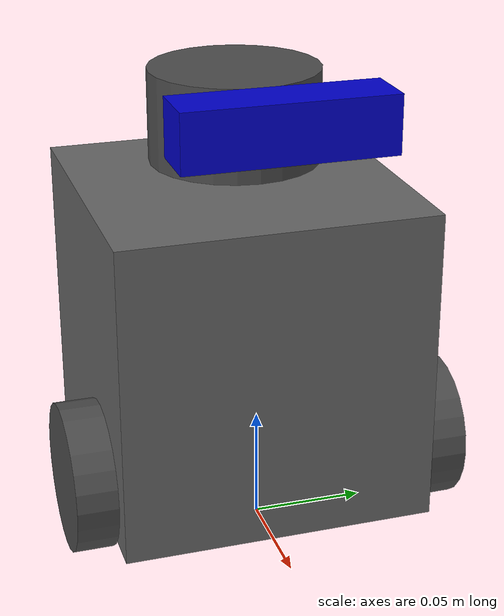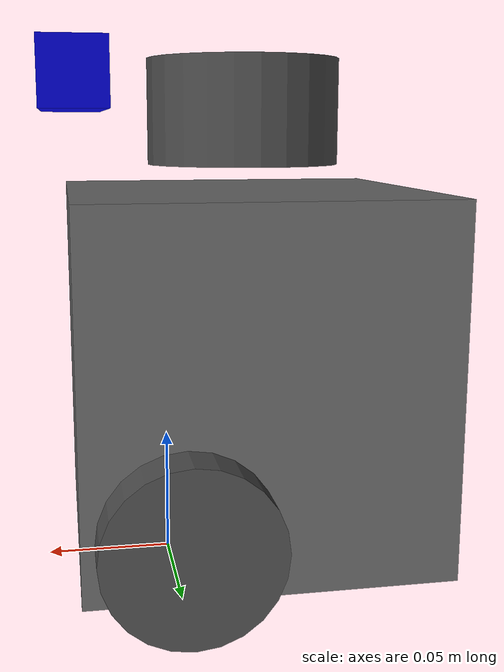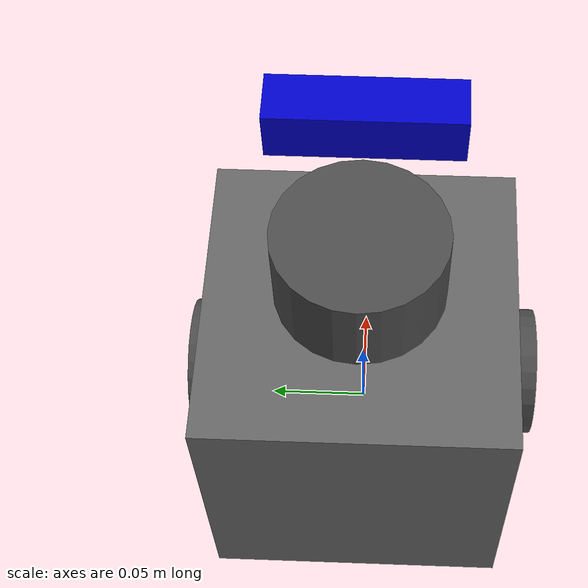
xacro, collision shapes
<?xml version="1.0" ?>
<!--
  TurtleBot3 Burger Pro 主描述文件（可参数化）。

  说明：
  1) 本文件是“源文件”，建议优先修改这里。
  2) turtlebot3_burger_pro.urdf 可由 xacro 展开生成，适合运行时直接加载。
  3) 本体几何基本沿用 TB3 Burger，传感器按 RPLIDAR A2M12 + RealSense D435i 改装结构近似。
-->
<robot name="turtlebot3_burger"
  xmlns:xacro="http://ros.org/wiki/xacro">

  <!-- 保留与官方依赖对齐（当前未直接 include）。 -->

  <!-- 多机器人扩展参数：为空时不加前缀。 -->
  <xacro:arg name="namespace" default=""/>
  <xacro:property name="namespace" value="$(arg namespace)"/>

  <!-- 可视化颜色定义（不影响物理，仅影响 RViz/Gazebo 外观）。 -->
  <material name="black"><color rgba="0.0 0.0 0.0 1.0"/></material>
  <material name="dark"><color rgba="0.3 0.3 0.3 1.0"/></material>
  <material name="light_black"><color rgba="0.4 0.4 0.4 1.0"/></material>
  <material name="blue"><color rgba="0.0 0.0 0.8 1.0"/></material>
  <material name="green"><color rgba="0.0 0.8 0.0 1.0"/></material>
  <material name="grey"><color rgba="0.5 0.5 0.5 1.0"/></material>
  <material name="orange"><color rgba="1.0 0.4235 0.0392 1.0"/></material>
  <material name="brown"><color rgba="0.8706 0.8118 0.7647 1.0"/></material>
  <material name="red"><color rgba="0.8 0.0 0.0 1.0"/></material>
  <material name="white"><color rgba="1.0 1.0 1.0 1.0"/></material>

  <!-- =========================
       1) 底盘与机体
       ========================= -->
  <link name="${namespace}base_footprint"/>

  <!-- base_footprint -> base_link：底盘离地高度 1cm -->
  <joint name="${namespace}base_joint" type="fixed">
    <parent link="${namespace}base_footprint"/>
    <child link="${namespace}base_link"/>
    <origin xyz="0.0 0.0 0.010" rpy="0 0 0"/>
  </joint>

  <link name="${namespace}base_link">
    <visual>
      <origin xyz="-0.032 0 0.0" rpy="0 0 0"/>
      <geometry>
        <mesh filename="package://turtlebot3_description/meshes/bases/burger_base.stl" scale="0.001 0.001 0.001"/>
      </geometry>
      <material name="light_black"/>
    </visual>

    <collision>
      <origin xyz="-0.032 0 0.070" rpy="0 0 0"/>
      <geometry>
        <box size="0.140 0.140 0.143"/>
      </geometry>
    </collision>

    <inertial>
      <origin xyz="0 0 0" rpy="0 0 0"/>
      <mass value="8.2573504e-01"/>
      <inertia ixx="2.2124416e-03" ixy="-1.2294101e-05" ixz="3.4938785e-05" iyy="2.1193702e-03" iyz="-5.0120904e-06" izz="2.0064271e-03" />
    </inertial>
  </link>

  <!-- =========================
       2) 差速轮
       ========================= -->
  <joint name="${namespace}wheel_left_joint" type="continuous">
    <parent link="${namespace}base_link"/>
    <child link="${namespace}wheel_left_link"/>
    <origin xyz="0.0 0.08 0.023" rpy="-1.57 0 0"/>
    <axis xyz="0 0 1"/>
    <dynamics damping="0.2" friction="0.2"/>
  </joint>

  <link name="${namespace}wheel_left_link">
    <visual>
      <origin xyz="0 0 0" rpy="1.57 0 0"/>
      <geometry>
        <mesh filename="package://turtlebot3_description/meshes/wheels/left_tire.stl" scale="0.001 0.001 0.001"/>
      </geometry>
      <material name="dark"/>
    </visual>

    <collision>
      <origin xyz="0 0 0" rpy="0 0 0"/>
      <geometry>
        <cylinder length="0.018" radius="0.033"/>
      </geometry>
    </collision>

    <inertial>
      <origin xyz="0 0 0" />
      <mass value="2.8498940e-02" />
      <inertia ixx="1.1175580e-05" ixy="-4.2369783e-11" ixz="-5.9381719e-09" iyy="1.1192413e-05" iyz="-1.4400107e-11" izz="2.0712558e-05" />
    </inertial>
  </link>

  <joint name="${namespace}wheel_right_joint" type="continuous">
    <parent link="${namespace}base_link"/>
    <child link="${namespace}wheel_right_link"/>
    <origin xyz="0.0 -0.080 0.023" rpy="-1.57 0 0"/>
    <axis xyz="0 0 1"/>
    <dynamics damping="0.2" friction="0.2"/>
  </joint>

  <link name="${namespace}wheel_right_link">
    <visual>
      <origin xyz="0 0 0" rpy="1.57 0 0"/>
      <geometry>
        <mesh filename="package://turtlebot3_description/meshes/wheels/right_tire.stl" scale="0.001 0.001 0.001"/>
      </geometry>
      <material name="dark"/>
    </visual>

    <collision>
      <origin xyz="0 0 0" rpy="0 0 0"/>
      <geometry>
        <cylinder length="0.018" radius="0.033"/>
      </geometry>
    </collision>

    <inertial>
      <origin xyz="0 0 0" />
      <mass value="2.8498940e-02" />
      <inertia ixx="1.1175580e-05" ixy="-4.2369783e-11" ixz="-5.9381719e-09" iyy="1.1192413e-05" iyz="-1.4400107e-11" izz="2.0712558e-05" />
    </inertial>
  </link>

  <!-- 后万向轮（被动） -->
  <joint name="${namespace}caster_back_joint" type="fixed">
    <parent link="${namespace}base_link"/>
    <child link="${namespace}caster_back_link"/>
    <origin xyz="-0.081 0 -0.004" rpy="-1.57 0 0"/>
  </joint>

  <link name="${namespace}caster_back_link">
    <collision>
      <origin xyz="0 0.001 0" rpy="0 0 0"/>
      <geometry>
        <box size="0.030 0.009 0.020"/>
      </geometry>
    </collision>

    <inertial>
      <origin xyz="0 0 0" />
      <mass value="0.005" />
      <inertia ixx="0.001" ixy="0.0" ixz="0.0" iyy="0.001" iyz="0.0" izz="0.001" />
    </inertial>
  </link>

  <!-- =========================
       3) 传感器坐标系（TF）
       ========================= -->
  <joint name="${namespace}imu_joint" type="fixed">
    <parent link="${namespace}base_link"/>
    <child link="${namespace}imu_link"/>
    <origin xyz="-0.032 0 0.068" rpy="0 0 0"/>
  </joint>
  <link name="${namespace}imu_link"/>

  <joint name="${namespace}scan_joint" type="fixed">
    <parent link="${namespace}base_link"/>
    <child link="${namespace}base_scan"/>
    <origin xyz="-0.032 0 0.172" rpy="0 0 0"/>
  </joint>

  <link name="${namespace}base_scan">
    <visual>
      <origin xyz="0 0 0.0" rpy="0 0 0"/>
      <geometry>
        <cylinder length="0.041" radius="0.038"/>
      </geometry>
      <material name="dark"/>
    </visual>

    <collision>
      <origin xyz="0 0 0" rpy="0 0 0"/>
      <geometry>
        <cylinder length="0.041" radius="0.038"/>
      </geometry>
    </collision>

    <inertial>
      <mass value="0.19" />
      <origin xyz="0 0 0" />
      <inertia ixx="0.001" ixy="0.0" ixz="0.0" iyy="0.001" iyz="0.0" izz="0.001" />
    </inertial>
  </link>

  <!-- D435i 近似安装位姿：顶层前沿，位于 RPLIDAR 前方 -->
  <joint name="${namespace}camera_joint" type="fixed">
    <parent link="${namespace}base_link"/>
    <child link="${namespace}camera_link"/>
    <origin xyz="0.035 0 0.185" rpy="0 0 0"/>
  </joint>

  <link name="${namespace}camera_link">
    <visual>
      <origin xyz="0 0 0" rpy="0 0 0"/>
      <geometry>
        <box size="0.025 0.09 0.025"/>
      </geometry>
      <material name="blue"/>
    </visual>

    <collision>
      <origin xyz="0 0 0" rpy="0 0 0"/>
      <geometry>
        <box size="0.025 0.09 0.025"/>
      </geometry>
    </collision>

    <inertial>
      <mass value="0.072"/>
      <origin xyz="0 0 0"/>
      <inertia ixx="1e-4" ixy="0.0" ixz="0.0" iyy="1e-4" iyz="0.0" izz="1e-4"/>
    </inertial>
  </link>

</robot>
